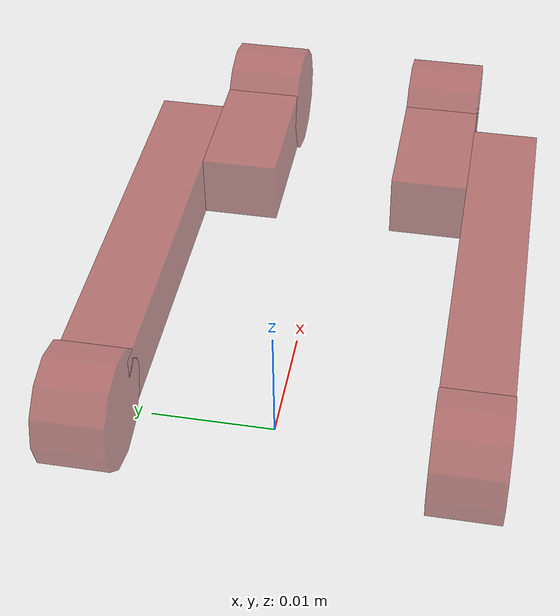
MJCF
<?xml version="1.0" encoding="UTF-8"?>
<mujoco model="manual_collision">
  <compiler angle="radian"/>
  <default>
    <default class="collision">
      <geom type="mesh" group="0" rgba="0.5 0 0 0.5"/>
    </default>
  </default>
  <asset>
    <mesh name="_sn_python1_manual_collision_13" file="meshes/sn_python1_manual_collision_13.stl"/>
    <mesh name="_sn_python1_manual_collision_14" file="meshes/sn_python1_manual_collision_14.stl"/>
    <mesh name="_sn_python1_manual_collision_15" file="meshes/sn_python1_manual_collision_15.stl"/>
    <mesh name="_sn_python1_manual_collision_16" file="meshes/sn_python1_manual_collision_16.stl"/>
    <mesh name="_sn_python1_manual_collision_5" file="meshes/sn_python1_manual_collision_5.stl"/>
    <mesh name="_sn_python1_manual_collision_5.001" file="meshes/sn_python1_manual_collision_5.001.stl"/>
    <mesh name="_sn_python1_manual_collision_6" file="meshes/sn_python1_manual_collision_6.stl"/>
    <mesh name="_sn_python1_manual_collision_6.001" file="meshes/sn_python1_manual_collision_6.001.stl"/>
  </asset>
  <worldbody>
    <body name="python1" pos="0 0 0" quat="1 0 0 0">
      <inertial pos="0 0 0" mass="1" diaginertia="1e-4 1e-4 1e-4"/>
      <geom class="collision" type="mesh" mesh="_sn_python1_manual_collision_13" pos="0 0 0" quat="1 0 0 0"/>
      <geom class="collision" type="mesh" mesh="_sn_python1_manual_collision_14" pos="0 0 0" quat="1 0 0 0"/>
      <geom class="collision" type="mesh" mesh="_sn_python1_manual_collision_15" pos="0 0 0" quat="1 0 0 0"/>
      <geom class="collision" type="mesh" mesh="_sn_python1_manual_collision_16" pos="0 0 0" quat="1 0 0 0"/>
      <geom class="collision" type="mesh" mesh="_sn_python1_manual_collision_5" pos="0 0 0" quat="1 0 0 0"/>
      <geom class="collision" type="mesh" mesh="_sn_python1_manual_collision_5.001" pos="0 0 0" quat="1 0 0 0"/>
      <geom class="collision" type="mesh" mesh="_sn_python1_manual_collision_6" pos="0 0 0" quat="1 0 0 0"/>
      <geom class="collision" type="mesh" mesh="_sn_python1_manual_collision_6.001" pos="0 0 0" quat="1 0 0 0"/>
    </body>
  </worldbody>
</mujoco>
